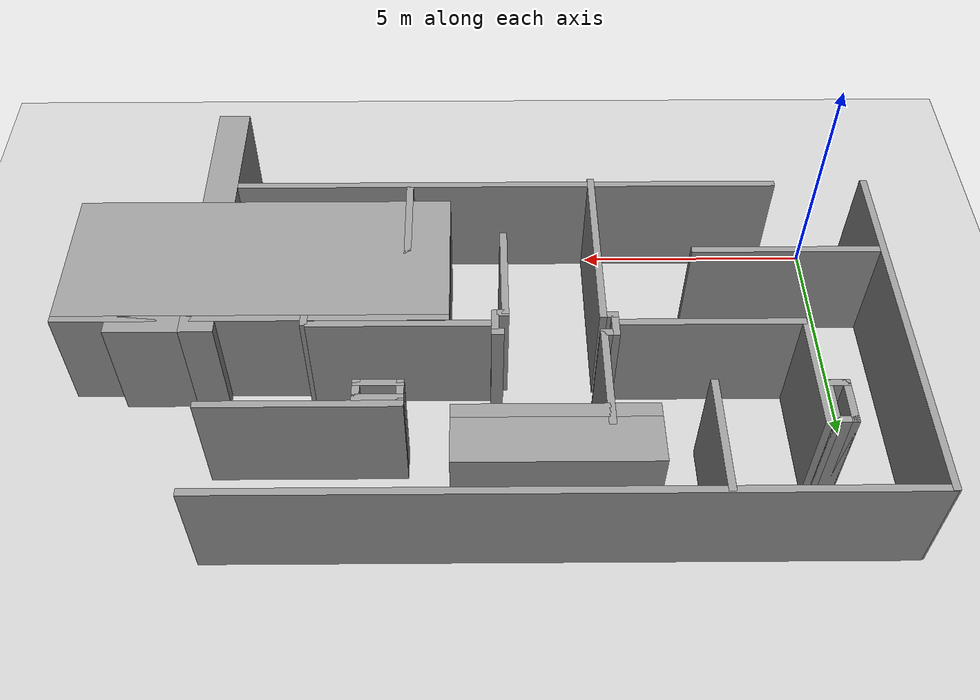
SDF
<sdf version="1.7">
 <world name="default">
  <model name="ground_plane">
   <static>1</static>
   <link name="link">
    <collision name="collision">
     <geometry><plane><normal>0 0 1</normal><size>100 100</size></plane></geometry>
     <surface>
      <contact><collide_bitmask>65535</collide_bitmask></contact>
      <friction><ode><mu>100</mu><mu2>50</mu2></ode></friction>
     </surface>
    </collision>
    <visual name="visual">
     <cast_shadows>0</cast_shadows>
     <geometry><plane><normal>0 0 1</normal><size>100 100</size></plane></geometry>
     <material>
      <script><uri>file://media/materials/scripts/gazebo.material</uri><name>Gazebo/Grey</name></script>
     </material>
    </visual>
   </link>
  </model>
  <model name="myroom_long_start">
   <pose>6.00346 4.01651 0 0 -0 0</pose>
   <link name="Wall_0">
    <collision name="Wall_0_Collision">
     <geometry><box><size>12 0.15 2.5</size></box></geometry>
     <pose>0 0 1.25 0 -0 0</pose>
    </collision>
    <visual name="Wall_0_Visual">
     <pose>0 0 1.25 0 -0 0</pose>
     <geometry><box><size>12 0.15 2.5</size></box></geometry>
     <material>
      <script><uri>file://media/materials/scripts/gazebo.material</uri><name>Gazebo/Grey</name></script>
      <ambient>1 1 1 1</ambient>
     </material>
     <meta><layer>0</layer></meta>
    </visual>
    <pose>0.977061 -3.98139 0 0 -0 0</pose>
   </link>
   <link name="Wall_10">
    <collision name="Wall_10_Collision">
     <geometry><box><size>4 0.15 2.5</size></box></geometry>
     <pose>0 0 1.25 0 -0 0</pose>
    </collision>
    <visual name="Wall_10_Visual">
     <pose>0 0 1.25 0 -0 0</pose>
     <geometry><box><size>4 0.15 2.5</size></box></geometry>
     <material>
      <script><uri>file://media/materials/scripts/gazebo.material</uri><name>Gazebo/Grey</name></script>
      <ambient>1 1 1 1</ambient>
     </material>
     <meta><layer>0</layer></meta>
    </visual>
    <pose>-4.95933 -1.98457 0 0 -0 0</pose>
   </link>
   <link name="Wall_12">
    <collision name="Wall_12_Collision">
     <geometry><box><size>4 0.15 2.5</size></box></geometry>
     <pose>0 0 1.25 0 -0 0</pose>
    </collision>
    <visual name="Wall_12_Visual">
     <pose>0 0 1.25 0 -0 0</pose>
     <geometry><box><size>4 0.15 2.5</size></box></geometry>
     <material>
      <script><uri>file://media/materials/scripts/gazebo.material</uri><name>Gazebo/Grey</name></script>
      <ambient>1 1 1 1</ambient>
     </material>
     <meta><layer>0</layer></meta>
    </visual>
    <pose>-0.973865 -2.13486 0 0 -0 -1.5708</pose>
   </link>
   <link name="Wall_16">
    <collision name="Wall_16_Collision">
     <geometry><box><size>2.5 0.15 2.5</size></box></geometry>
     <pose>0 0 1.25 0 -0 0</pose>
    </collision>
    <visual name="Wall_16_Visual">
     <pose>0 0 1.25 0 -0 0</pose>
     <geometry><box><size>2.5 0.15 2.5</size></box></geometry>
     <material>
      <script><uri>file://media/materials/scripts/gazebo.material</uri><name>Gazebo/Grey</name></script>
      <ambient>1 1 1 1</ambient>
     </material>
     <meta><layer>0</layer></meta>
    </visual>
    <pose>-5.00955 1.19594 0 0 -0 -1.5708</pose>
   </link>
   <link name="Wall_18">
    <collision name="Wall_18_Collision">
     <geometry><box><size>2.5 0.15 2.5</size></box></geometry>
     <pose>0 0 1.25 0 -0 0</pose>
    </collision>
    <visual name="Wall_18_Visual">
     <pose>0 0 1.25 0 -0 0</pose>
     <geometry><box><size>2.5 0.15 2.5</size></box></geometry>
     <material>
      <script><uri>file://media/materials/scripts/gazebo.material</uri><name>Gazebo/Grey</name></script>
      <ambient>1 1 1 1</ambient>
     </material>
     <meta><layer>0</layer></meta>
    </visual>
    <pose>5.02045 -1.22406 0 0 -0 -1.5708</pose>
   </link>
   <link name="Wall_2">
    <collision name="Wall_2_Collision">
     <geometry><box><size>8 0.15 2.5</size></box></geometry>
     <pose>0 0 1.25 0 -0 0</pose>
    </collision>
    <visual name="Wall_2_Visual">
     <pose>0 0 1.25 0 -0 0</pose>
     <geometry><box><size>8 0.15 2.5</size></box></geometry>
     <material>
      <script><uri>file://media/materials/scripts/gazebo.material</uri><name>Gazebo/Grey</name></script>
      <ambient>1 1 1 1</ambient>
     </material>
     <meta><layer>0</layer></meta>
    </visual>
    <pose>-6.99952 -0.062096 0 0 -0 -1.5708</pose>
   </link>
   <link name="Wall_20">
    <collision name="Wall_20_Collision">
     <geometry><box><size>2.5 0.15 2.5</size></box></geometry>
     <pose>0 0 1.25 0 -0 0</pose>
    </collision>
    <visual name="Wall_20_Visual">
     <pose>0 0 1.25 0 -0 0</pose>
     <geometry><box><size>2.5 0.15 2.5</size></box></geometry>
     <material>
      <script><uri>file://media/materials/scripts/gazebo.material</uri><name>Gazebo/Grey</name></script>
      <ambient>1 1 1 1</ambient>
     </material>
     <meta><layer>0</layer></meta>
    </visual>
    <pose>-2.98955 2.67594 0 0 -0 -1.5708</pose>
   </link>
   <link name="Wall_22">
    <collision name="Wall_22_Collision">
     <geometry><box><size>2.5 0.15 2.5</size></box></geometry>
     <pose>0 0 1.25 0 -0 0</pose>
    </collision>
    <visual name="Wall_22_Visual">
     <pose>0 0 1.25 0 -0 0</pose>
     <geometry><box><size>2.5 0.15 2.5</size></box></geometry>
     <material>
      <script><uri>file://media/materials/scripts/gazebo.material</uri><name>Gazebo/Grey</name></script>
      <ambient>1 1 1 1</ambient>
     </material>
     <meta><layer>0</layer></meta>
    </visual>
    <pose>3.00045 -2.70406 0 0 -0 -1.5708</pose>
   </link>
   <link name="Wall_24">
    <collision name="Wall_24_Collision">
     <geometry><box><size>3.75 0.15 2.5</size></box></geometry>
     <pose>0 0 1.25 0 -0 0</pose>
    </collision>
    <visual name="Wall_24_Visual">
     <pose>0 0 1.25 0 -0 0</pose>
     <geometry><box><size>3.75 0.15 2.5</size></box></geometry>
     <material>
      <script><uri>file://media/materials/scripts/gazebo.material</uri><name>Gazebo/Grey</name></script>
      <ambient>1 1 1 1</ambient>
     </material>
     <meta><layer>0</layer></meta>
    </visual>
    <pose>-3.15343 -0.018496 0 0 -0 0</pose>
   </link>
   <link name="Wall_26">
    <collision name="Wall_26_Collision">
     <geometry><box><size>3.75 0.15 2.5</size></box></geometry>
     <pose>0 0 1.25 0 -0 0</pose>
    </collision>
    <visual name="Wall_26_Visual">
     <pose>0 0 1.25 0 -0 0</pose>
     <geometry><box><size>3.75 0.15 2.5</size></box></geometry>
     <material>
      <script><uri>file://media/materials/scripts/gazebo.material</uri><name>Gazebo/Grey</name></script>
      <ambient>1 1 1 1</ambient>
     </material>
     <meta><layer>0</layer></meta>
    </visual>
    <pose>3.11608 -0.008694 0 0 -0 0</pose>
   </link>
   <link name="Wall_28">
    <collision name="Wall_28_Collision">
     <geometry><box><size>2.25 0.15 2.5</size></box></geometry>
     <pose>0 0 1.25 0 -0 0</pose>
    </collision>
    <visual name="Wall_28_Visual">
     <pose>0 0 1.25 0 -0 0</pose>
     <geometry><box><size>2.25 0.15 2.5</size></box></geometry>
     <material>
      <script><uri>file://media/materials/scripts/gazebo.material</uri><name>Gazebo/Grey</name></script>
      <ambient>1 1 1 1</ambient>
     </material>
     <meta><layer>0</layer></meta>
    </visual>
    <pose>-0.964656 1.33168 0 0 -0 -1.5708</pose>
   </link>
   <link name="Wall_30">
    <collision name="Wall_30_Collision">
     <geometry><box><size>2.25 0.15 2.5</size></box></geometry>
     <pose>0 0 1.25 0 -0 0</pose>
    </collision>
    <visual name="Wall_30_Visual">
     <pose>0 0 1.25 0 -0 0</pose>
     <geometry><box><size>2.25 0.15 2.5</size></box></geometry>
     <material>
      <script><uri>file://media/materials/scripts/gazebo.material</uri><name>Gazebo/Grey</name></script>
      <ambient>1 1 1 1</ambient>
     </material>
     <meta><layer>0</layer></meta>
    </visual>
    <pose>0.986145 -1.37675 0 0 -0 -1.5708</pose>
   </link>
   <link name="Wall_32">
    <collision name="Wall_32_Collision">
     <geometry><box><size>0.25 0.15 2.5</size></box></geometry>
     <pose>0 0 1.25 0 -0 0</pose>
    </collision>
    <visual name="Wall_32_Visual">
     <pose>0 0 1.25 0 -0 0</pose>
     <geometry><box><size>0.25 0.15 2.5</size></box></geometry>
     <material>
      <script><uri>file://media/materials/scripts/gazebo.material</uri><name>Gazebo/Grey</name></script>
      <ambient>1 1 1 1</ambient>
     </material>
     <meta><layer>0</layer></meta>
    </visual>
    <pose>-1.15449 -0.210647 0 0 -0 0</pose>
   </link>
   <link name="Wall_34">
    <collision name="Wall_34_Collision">
     <geometry><box><size>0.5 0.15 2.5</size></box></geometry>
     <pose>0 0 1.25 0 -0 0</pose>
    </collision>
    <visual name="Wall_34_Visual">
     <pose>0 0 1.25 0 -0 0</pose>
     <geometry><box><size>0.5 0.15 2.5</size></box></geometry>
     <material>
      <script><uri>file://media/materials/scripts/gazebo.material</uri><name>Gazebo/Grey</name></script>
      <ambient>1 1 1 1</ambient>
     </material>
     <meta><layer>0</layer></meta>
    </visual>
    <pose>-1.20471 0.066247 0 0 -0 -1.5708</pose>
   </link>
   <link name="Wall_36">
    <collision name="Wall_36_Collision">
     <geometry><box><size>0.25 0.15 2.5</size></box></geometry>
     <pose>0 0 1.25 0 -0 0</pose>
    </collision>
    <visual name="Wall_36_Visual">
     <pose>0 0 1.25 0 -0 0</pose>
     <geometry><box><size>0.25 0.15 2.5</size></box></geometry>
     <material>
      <script><uri>file://media/materials/scripts/gazebo.material</uri><name>Gazebo/Grey</name></script>
      <ambient>1 1 1 1</ambient>
     </material>
     <meta><layer>0</layer></meta>
    </visual>
    <pose>-1.01476 0.240944 0 0 -0 0</pose>
   </link>
   <link name="Wall_38">
    <collision name="Wall_38_Collision">
     <geometry><box><size>0.25 0.15 2.5</size></box></geometry>
     <pose>0 0 1.25 0 -0 0</pose>
    </collision>
    <visual name="Wall_38_Visual">
     <pose>0 0 1.25 0 -0 0</pose>
     <geometry><box><size>0.25 0.15 2.5</size></box></geometry>
     <material>
      <script><uri>file://media/materials/scripts/gazebo.material</uri><name>Gazebo/Grey</name></script>
      <ambient>1 1 1 1</ambient>
     </material>
     <meta><layer>0</layer></meta>
    </visual>
    <pose>1.03485 -0.273698 0 0 -0 3.14159</pose>
   </link>
   <link name="Wall_4">
    <collision name="Wall_4_Collision">
     <geometry><box><size>14 0.15 2.5</size></box></geometry>
     <pose>0 0 1.25 0 -0 0</pose>
    </collision>
    <visual name="Wall_4_Visual">
     <pose>0 0 1.25 0 -0 0</pose>
     <geometry><box><size>14 0.15 2.5</size></box></geometry>
     <material>
      <script><uri>file://media/materials/scripts/gazebo.material</uri><name>Gazebo/Grey</name></script>
      <ambient>1 1 1 1</ambient>
     </material>
     <meta><layer>0</layer></meta>
    </visual>
    <pose>-0.026045 3.88302 0 0 -0 3.14159</pose>
   </link>
   <link name="Wall_40">
    <collision name="Wall_40_Collision">
     <geometry><box><size>0.5 0.15 2.5</size></box></geometry>
     <pose>0 0 1.25 0 -0 0</pose>
    </collision>
    <visual name="Wall_40_Visual">
     <pose>0 0 1.25 0 -0 0</pose>
     <geometry><box><size>0.5 0.15 2.5</size></box></geometry>
     <material>
      <script><uri>file://media/materials/scripts/gazebo.material</uri><name>Gazebo/Grey</name></script>
      <ambient>1 1 1 1</ambient>
     </material>
     <meta><layer>0</layer></meta>
    </visual>
    <pose>1.19315 -0.098997 0 0 -0 -1.5708</pose>
   </link>
   <link name="Wall_42">
    <collision name="Wall_42_Collision">
     <geometry><box><size>0.25 0.15 2.5</size></box></geometry>
     <pose>0 0 1.25 0 -0 0</pose>
    </collision>
    <visual name="Wall_42_Visual">
     <pose>0 0 1.25 0 -0 0</pose>
     <geometry><box><size>0.25 0.15 2.5</size></box></geometry>
     <material>
      <script><uri>file://media/materials/scripts/gazebo.material</uri><name>Gazebo/Grey</name></script>
      <ambient>1 1 1 1</ambient>
     </material>
     <meta><layer>0</layer></meta>
    </visual>
    <pose>1.14371 0.20938 0 0 -0 0</pose>
   </link>
   <link name="Wall_8">
    <collision name="Wall_8_Collision">
     <geometry><box><size>4 0.15 2.5</size></box></geometry>
     <pose>0 0 1.25 0 -0 0</pose>
    </collision>
    <visual name="Wall_8_Visual">
     <pose>0 0 1.25 0 -0 0</pose>
     <geometry><box><size>4 0.15 2.5</size></box></geometry>
     <material>
      <script><uri>file://media/materials/scripts/gazebo.material</uri><name>Gazebo/Grey</name></script>
      <ambient>1 1 1 1</ambient>
     </material>
     <meta><layer>0</layer></meta>
    </visual>
    <pose>4.95677 1.9545 0 0 -0 0</pose>
   </link>
   <static>1</static>
  </model>
  <model name="half_wall">
   <pose>0.67196 6.91648 0 0 -0 0</pose>
   <link name="Wall_0">
    <collision name="Wall_0_Collision">
     <geometry><box><size>1 0.15 2.5</size></box></geometry>
     <pose>0 0 1.25 0 -0 0</pose>
    </collision>
    <visual name="Wall_0_Visual">
     <pose>0 0 1.25 0 -0 0</pose>
     <geometry><box><size>1 0.15 2.5</size></box></geometry>
     <material>
      <script><uri>file://media/materials/scripts/gazebo.material</uri><name>Gazebo/Grey</name></script>
      <ambient>1 1 1 1</ambient>
     </material>
     <meta><layer>0</layer></meta>
    </visual>
    <pose>-0.175 -0.9541 0 0 -0 1.5708</pose>
   </link>
   <link name="Wall_1">
    <collision name="Wall_1_Collision">
     <geometry><box><size>0.5 0.15 2.5</size></box></geometry>
     <pose>0 0 1.25 0 -0 0</pose>
    </collision>
    <visual name="Wall_1_Visual">
     <pose>0 0 1.25 0 -0 0</pose>
     <geometry><box><size>0.5 0.15 2.5</size></box></geometry>
     <material>
      <script><uri>file://media/materials/scripts/gazebo.material</uri><name>Gazebo/Grey</name></script>
      <ambient>1 1 1 1</ambient>
     </material>
     <meta><layer>0</layer></meta>
    </visual>
    <pose>0 -0.5291 0 0 -0 0</pose>
   </link>
   <link name="Wall_2">
    <collision name="Wall_2_Collision">
     <geometry><box><size>1 0.15 2.5</size></box></geometry>
     <pose>0 0 1.25 0 -0 0</pose>
    </collision>
    <visual name="Wall_2_Visual">
     <pose>0 0 1.25 0 -0 0</pose>
     <geometry><box><size>1 0.15 2.5</size></box></geometry>
     <material>
      <script><uri>file://media/materials/scripts/gazebo.material</uri><name>Gazebo/Grey</name></script>
      <ambient>1 1 1 1</ambient>
     </material>
     <meta><layer>0</layer></meta>
    </visual>
    <pose>0.175 -0.9541 0 0 -0 -1.5708</pose>
   </link>
   <link name="Wall_3">
    <collision name="Wall_3_Collision">
     <geometry><box><size>0.5 0.15 2.5</size></box></geometry>
     <pose>0 0 1.25 0 -0 0</pose>
    </collision>
    <visual name="Wall_3_Visual">
     <pose>0 0 1.25 0 -0 0</pose>
     <geometry><box><size>0.5 0.15 2.5</size></box></geometry>
     <material>
      <script><uri>file://media/materials/scripts/gazebo.material</uri><name>Gazebo/Grey</name></script>
      <ambient>1 1 1 1</ambient>
     </material>
     <meta><layer>0</layer></meta>
    </visual>
    <pose>0 -1.3791 0 0 -0 3.14159</pose>
   </link>
   <static>1</static>
  </model>
  <model name="half_wall_0">
   <pose>8.50621 5.64751 0 0 -0 1.57113</pose>
   <link name="Wall_0">
    <collision name="Wall_0_Collision">
     <geometry><box><size>1 0.15 2.5</size></box></geometry>
     <pose>0 0 1.25 0 -0 0</pose>
    </collision>
    <visual name="Wall_0_Visual">
     <pose>0 0 1.25 0 -0 0</pose>
     <geometry><box><size>1 0.15 2.5</size></box></geometry>
     <material>
      <script><uri>file://media/materials/scripts/gazebo.material</uri><name>Gazebo/Grey</name></script>
      <ambient>1 1 1 1</ambient>
     </material>
     <meta><layer>0</layer></meta>
    </visual>
    <pose>-0.175 -0.9541 0 0 -0 1.5708</pose>
   </link>
   <link name="Wall_1">
    <collision name="Wall_1_Collision">
     <geometry><box><size>0.5 0.15 2.5</size></box></geometry>
     <pose>0 0 1.25 0 -0 0</pose>
    </collision>
    <visual name="Wall_1_Visual">
     <pose>0 0 1.25 0 -0 0</pose>
     <geometry><box><size>0.5 0.15 2.5</size></box></geometry>
     <material>
      <script><uri>file://media/materials/scripts/gazebo.material</uri><name>Gazebo/Grey</name></script>
      <ambient>1 1 1 1</ambient>
     </material>
     <meta><layer>0</layer></meta>
    </visual>
    <pose>0 -0.5291 0 0 -0 0</pose>
   </link>
   <link name="Wall_2">
    <collision name="Wall_2_Collision">
     <geometry><box><size>1 0.15 2.5</size></box></geometry>
     <pose>0 0 1.25 0 -0 0</pose>
    </collision>
    <visual name="Wall_2_Visual">
     <pose>0 0 1.25 0 -0 0</pose>
     <geometry><box><size>1 0.15 2.5</size></box></geometry>
     <material>
      <script><uri>file://media/materials/scripts/gazebo.material</uri><name>Gazebo/Grey</name></script>
      <ambient>1 1 1 1</ambient>
     </material>
     <meta><layer>0</layer></meta>
    </visual>
    <pose>0.175 -0.9541 0 0 -0 -1.5708</pose>
   </link>
   <link name="Wall_3">
    <collision name="Wall_3_Collision">
     <geometry><box><size>0.5 0.15 2.5</size></box></geometry>
     <pose>0 0 1.25 0 -0 0</pose>
    </collision>
    <visual name="Wall_3_Visual">
     <pose>0 0 1.25 0 -0 0</pose>
     <geometry><box><size>0.5 0.15 2.5</size></box></geometry>
     <material>
      <script><uri>file://media/materials/scripts/gazebo.material</uri><name>Gazebo/Grey</name></script>
      <ambient>1 1 1 1</ambient>
     </material>
     <meta><layer>0</layer></meta>
    </visual>
    <pose>0 -1.3791 0 0 -0 3.14159</pose>
   </link>
   <static>1</static>
  </model>
  <model name="Wall_14_a">
   <static>1</static>
   <pose>6.083 6.147 1.250 0 0 0</pose>
   <link name="link">
    <collision name="collision"><geometry><box><size>4.000 0.306 2.50</size></box></geometry></collision>
    <visual name="visual">
     <geometry><box><size>4.000 0.306 2.50</size></box></geometry>
     <material>
      <script><uri>file://media/materials/scripts/gazebo.material</uri><name>Gazebo/Grey</name></script>
     </material>
    </visual>
   </link>
  </model>
  <model name="Wall_14_b">
   <static>1</static>
   <pose>6.083 6.722 1.250 0 0 0</pose>
   <link name="link">
    <collision name="collision"><geometry><box><size>4.000 -1.156 2.50</size></box></geometry></collision>
    <visual name="visual">
     <geometry><box><size>4.000 -1.156 2.50</size></box></geometry>
     <material>
      <script><uri>file://media/materials/scripts/gazebo.material</uri><name>Gazebo/Grey</name></script>
     </material>
    </visual>
   </link>
  </model>
  <model name="Wall_6_a">
   <static>1</static>
   <pose>12.113 2.164 1.250 0 0 0</pose>
   <link name="link">
    <collision name="collision"><geometry><box><size>8.000 -3.227 2.50</size></box></geometry></collision>
    <visual name="visual">
     <geometry><box><size>8.000 -3.227 2.50</size></box></geometry>
     <material>
      <script><uri>file://media/materials/scripts/gazebo.material</uri><name>Gazebo/Grey</name></script>
     </material>
    </visual>
   </link>
  </model>
  <model name="Wall_6_b">
   <static>1</static>
   <pose>12.113 2.739 1.250 0 0 0</pose>
   <link name="link">
    <collision name="collision"><geometry><box><size>8.000 2.377 2.50</size></box></geometry></collision>
    <visual name="visual">
     <geometry><box><size>8.000 2.377 2.50</size></box></geometry>
     <material>
      <script><uri>file://media/materials/scripts/gazebo.material</uri><name>Gazebo/Grey</name></script>
     </material>
    </visual>
   </link>
  </model>
  <model name="branch_wall_0">
   <static>1</static>
   <pose>13.150 2.875 1.250 0 0 0</pose>
   <link name="link">
    <collision name="collision"><geometry><box><size>0.700 2.650 2.50</size></box></geometry></collision>
    <visual name="visual">
     <geometry><box><size>0.700 2.650 2.50</size></box></geometry>
     <material>
      <script><uri>file://media/materials/scripts/gazebo.material</uri><name>Gazebo/Grey</name></script>
     </material>
    </visual>
   </link>
  </model>
  <model name="branch_wall_1">
   <static>1</static>
   <pose>13.150 -0.875 1.250 0 0 0</pose>
   <link name="link">
    <collision name="collision"><geometry><box><size>0.700 2.850 2.50</size></box></geometry></collision>
    <visual name="visual">
     <geometry><box><size>0.700 2.850 2.50</size></box></geometry>
     <material>
      <script><uri>file://media/materials/scripts/gazebo.material</uri><name>Gazebo/Grey</name></script>
     </material>
    </visual>
   </link>
  </model>
  <model name="branch_wall_2">
   <static>1</static>
   <pose>14.250 3.950 1.250 0 0 0</pose>
   <link name="link">
    <collision name="collision"><geometry><box><size>1.500 0.500 2.50</size></box></geometry></collision>
    <visual name="visual">
     <geometry><box><size>1.500 0.500 2.50</size></box></geometry>
     <material>
      <script><uri>file://media/materials/scripts/gazebo.material</uri><name>Gazebo/Grey</name></script>
     </material>
    </visual>
   </link>
  </model>
 </world>
</sdf>
